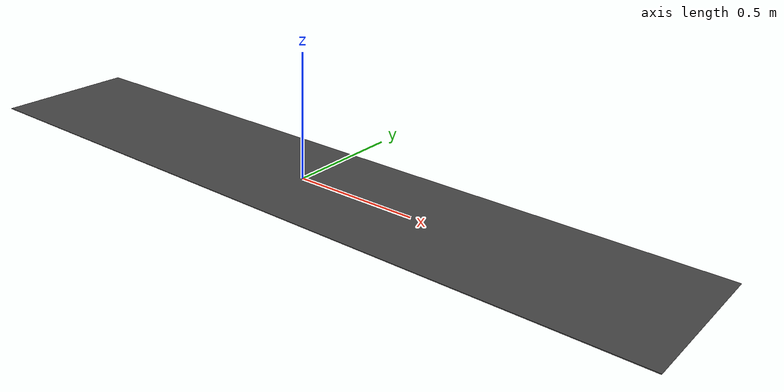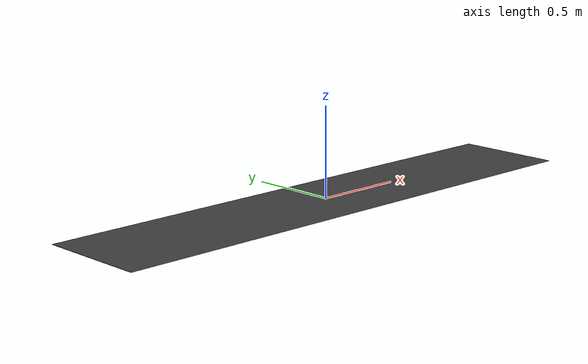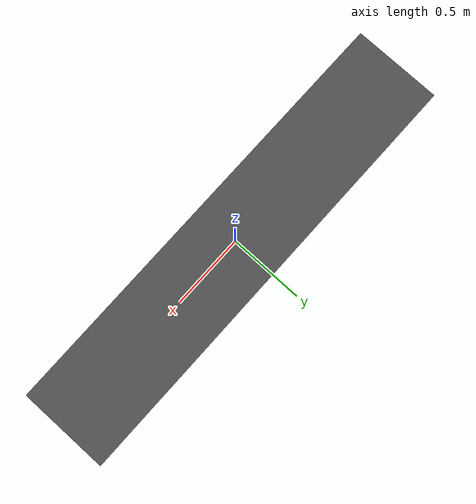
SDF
<?xml version="1.0" ?>
<sdf version="1.6">

    <model name="conveyor_belt">
      <static>1</static>
      <link name="belt">

        <inertial>
          <inertia>
            <ixx>3.8185</ixx>
            <ixy>0</ixy>
            <ixz>0</ixz>
            <iyy>1781.5</iyy>
            <iyz>0</iyz>
            <izz>1784.72</izz>
          </inertia>
          <mass>100</mass>
        </inertial>

        <visual name="belt_collision">
          <geometry>
            <box>
              <size>3.04 0.61 0.003</size>
            </box>
          </geometry>
          <material>
            <script>
              <uri>file://media/materials/scripts/gazebo.material</uri>
              <name>Gazebo/DarkGrey</name>
            </script>
          </material>
        </visual>

        <collision name="belt_collision">
          <geometry>
            <box>
              <size>3.04 0.61 0.003</size>
            </box>
          </geometry>
          <surface>
            <friction>
              <ode>
                <mu>1.0</mu>
                <mu2>1.0</mu2>
              </ode>
              <torsional>
                <coefficient>1000.0</coefficient>
                <patch_radius>0.1</patch_radius>
              </torsional>
            </friction>
          </surface>
        </collision>
      </link>
    </model>

  <!--/model-->
</sdf>
